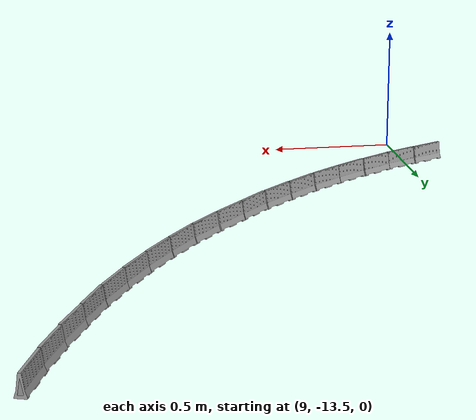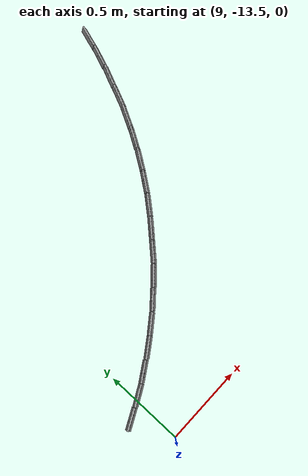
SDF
<sdf version="1.6">
 <world name="bfmc_official">
  <model name="separator_clone_clone_clone_clone_clone_clone_clone_clone_2_clone_clone_clone_clone_clone_clone_clone_clone">
   <link name="separator::separator::link_0">
    <inertial>
     <mass>1</mass>
     <inertia>
      <ixx>0.166667</ixx>
      <ixy>0</ixy>
      <ixz>0</ixz>
      <iyy>0.166667</iyy>
      <iyz>0</iyz>
      <izz>0.166667</izz>
     </inertia>
    </inertial>
    <visual name="visual">
     <geometry><mesh><uri>model://separator/meshes/separator.dae</uri><scale>1 1 1</scale></mesh></geometry>
     <material>
      <lighting>1</lighting>
      <script><uri>file://media/materials/scripts/gazebo.material</uri><name>Gazebo/Gray</name></script>
      <shader type="vertex"><normal_map>__default__</normal_map></shader>
      <ambient>0.3 0.3 0.3 1</ambient>
      <diffuse>0.7 0.7 0.7 1</diffuse>
      <specular>0.01 0.01 0.01 1</specular>
      <emissive>0 0 0 1</emissive>
     </material>
    </visual>
    <collision name="collision">
     <geometry><mesh><uri>model://separator/meshes/separator.dae</uri><scale>1 1 1</scale></mesh></geometry>
     <surface>
      <friction>
       <ode><mu>1</mu><mu2>1</mu2><fdir1>0 0 0</fdir1><slip1>0</slip1><slip2>0</slip2></ode>
       <torsional>
        <coefficient>1</coefficient>
        <patch_radius>0</patch_radius>
        <surface_radius>0</surface_radius>
        <use_patch_radius>1</use_patch_radius>
        <ode><slip>0</slip></ode>
       </torsional>
      </friction>
      <bounce><restitution_coefficient>0</restitution_coefficient><threshold>1e+06</threshold></bounce>
      <contact>
       <collide_without_contact>0</collide_without_contact>
       <collide_without_contact_bitmask>1</collide_without_contact_bitmask>
       <collide_bitmask>1</collide_bitmask>
       <ode>
        <soft_cfm>0</soft_cfm>
        <soft_erp>0.2</soft_erp>
        <kp>1e+13</kp>
        <kd>1</kd>
        <max_vel>0.01</max_vel>
        <min_depth>0</min_depth>
       </ode>
       <bullet>
        <split_impulse>1</split_impulse>
        <split_impulse_penetration_threshold>-0.01</split_impulse_penetration_threshold>
        <soft_cfm>0</soft_cfm>
        <soft_erp>0.2</soft_erp>
        <kp>1e+13</kp>
        <kd>1</kd>
       </bullet>
      </contact>
     </surface>
    </collision>
   </link>
   <static>1</static>
   <pose>8.90079 -13.2384 0.044642 0 -0 2.02995</pose>
  </model>
  <model name="separator_clone_clone_clone_clone_clone_clone_clone_clone_2_clone_clone_clone_clone_clone_clone_clone_clone_clone">
   <link name="separator::separator::link_0">
    <inertial>
     <mass>1</mass>
     <inertia>
      <ixx>0.166667</ixx>
      <ixy>0</ixy>
      <ixz>0</ixz>
      <iyy>0.166667</iyy>
      <iyz>0</iyz>
      <izz>0.166667</izz>
     </inertia>
    </inertial>
    <visual name="visual">
     <geometry><mesh><uri>model://separator/meshes/separator.dae</uri><scale>1 1 1</scale></mesh></geometry>
     <material>
      <lighting>1</lighting>
      <script><uri>file://media/materials/scripts/gazebo.material</uri><name>Gazebo/Gray</name></script>
      <shader type="vertex"><normal_map>__default__</normal_map></shader>
      <ambient>0.3 0.3 0.3 1</ambient>
      <diffuse>0.7 0.7 0.7 1</diffuse>
      <specular>0.01 0.01 0.01 1</specular>
      <emissive>0 0 0 1</emissive>
     </material>
    </visual>
    <collision name="collision">
     <geometry><mesh><uri>model://separator/meshes/separator.dae</uri><scale>1 1 1</scale></mesh></geometry>
     <surface>
      <friction>
       <ode><mu>1</mu><mu2>1</mu2><fdir1>0 0 0</fdir1><slip1>0</slip1><slip2>0</slip2></ode>
       <torsional>
        <coefficient>1</coefficient>
        <patch_radius>0</patch_radius>
        <surface_radius>0</surface_radius>
        <use_patch_radius>1</use_patch_radius>
        <ode><slip>0</slip></ode>
       </torsional>
      </friction>
      <bounce><restitution_coefficient>0</restitution_coefficient><threshold>1e+06</threshold></bounce>
      <contact>
       <collide_without_contact>0</collide_without_contact>
       <collide_without_contact_bitmask>1</collide_without_contact_bitmask>
       <collide_bitmask>1</collide_bitmask>
       <ode>
        <soft_cfm>0</soft_cfm>
        <soft_erp>0.2</soft_erp>
        <kp>1e+13</kp>
        <kd>1</kd>
        <max_vel>0.01</max_vel>
        <min_depth>0</min_depth>
       </ode>
       <bullet>
        <split_impulse>1</split_impulse>
        <split_impulse_penetration_threshold>-0.01</split_impulse_penetration_threshold>
        <soft_cfm>0</soft_cfm>
        <soft_erp>0.2</soft_erp>
        <kp>1e+13</kp>
        <kd>1</kd>
       </bullet>
      </contact>
     </surface>
    </collision>
   </link>
   <static>1</static>
   <pose>9.03025 -13.1748 0.044642 0 -0 2.05697</pose>
  </model>
  <model name="separator_clone_clone_clone_clone_clone_clone_clone_clone_2_clone_clone_clone_clone_clone_clone_clone_clone_clone_clone">
   <link name="separator::separator::link_0">
    <inertial>
     <mass>1</mass>
     <inertia>
      <ixx>0.166667</ixx>
      <ixy>0</ixy>
      <ixz>0</ixz>
      <iyy>0.166667</iyy>
      <iyz>0</iyz>
      <izz>0.166667</izz>
     </inertia>
    </inertial>
    <visual name="visual">
     <geometry><mesh><uri>model://separator/meshes/separator.dae</uri><scale>1 1 1</scale></mesh></geometry>
     <material>
      <lighting>1</lighting>
      <script><uri>file://media/materials/scripts/gazebo.material</uri><name>Gazebo/Gray</name></script>
      <shader type="vertex"><normal_map>__default__</normal_map></shader>
      <ambient>0.3 0.3 0.3 1</ambient>
      <diffuse>0.7 0.7 0.7 1</diffuse>
      <specular>0.01 0.01 0.01 1</specular>
      <emissive>0 0 0 1</emissive>
     </material>
    </visual>
    <collision name="collision">
     <geometry><mesh><uri>model://separator/meshes/separator.dae</uri><scale>1 1 1</scale></mesh></geometry>
     <surface>
      <friction>
       <ode><mu>1</mu><mu2>1</mu2><fdir1>0 0 0</fdir1><slip1>0</slip1><slip2>0</slip2></ode>
       <torsional>
        <coefficient>1</coefficient>
        <patch_radius>0</patch_radius>
        <surface_radius>0</surface_radius>
        <use_patch_radius>1</use_patch_radius>
        <ode><slip>0</slip></ode>
       </torsional>
      </friction>
      <bounce><restitution_coefficient>0</restitution_coefficient><threshold>1e+06</threshold></bounce>
      <contact>
       <collide_without_contact>0</collide_without_contact>
       <collide_without_contact_bitmask>1</collide_without_contact_bitmask>
       <collide_bitmask>1</collide_bitmask>
       <ode>
        <soft_cfm>0</soft_cfm>
        <soft_erp>0.2</soft_erp>
        <kp>1e+13</kp>
        <kd>1</kd>
        <max_vel>0.01</max_vel>
        <min_depth>0</min_depth>
       </ode>
       <bullet>
        <split_impulse>1</split_impulse>
        <split_impulse_penetration_threshold>-0.01</split_impulse_penetration_threshold>
        <soft_cfm>0</soft_cfm>
        <soft_erp>0.2</soft_erp>
        <kp>1e+13</kp>
        <kd>1</kd>
       </bullet>
      </contact>
     </surface>
    </collision>
   </link>
   <static>1</static>
   <pose>9.15316 -13.1034 0.044642 0 -0 2.12953</pose>
  </model>
  <model name="separator_clone_clone_clone_clone_clone_clone_clone_clone_2_clone_clone_clone_clone_clone_clone_clone_clone_clone_clone_clone">
   <link name="separator::separator::link_0">
    <inertial>
     <mass>1</mass>
     <inertia>
      <ixx>0.166667</ixx>
      <ixy>0</ixy>
      <ixz>0</ixz>
      <iyy>0.166667</iyy>
      <iyz>0</iyz>
      <izz>0.166667</izz>
     </inertia>
    </inertial>
    <visual name="visual">
     <geometry><mesh><uri>model://separator/meshes/separator.dae</uri><scale>1 1 1</scale></mesh></geometry>
     <material>
      <lighting>1</lighting>
      <script><uri>file://media/materials/scripts/gazebo.material</uri><name>Gazebo/Gray</name></script>
      <shader type="vertex"><normal_map>__default__</normal_map></shader>
      <ambient>0.3 0.3 0.3 1</ambient>
      <diffuse>0.7 0.7 0.7 1</diffuse>
      <specular>0.01 0.01 0.01 1</specular>
      <emissive>0 0 0 1</emissive>
     </material>
    </visual>
    <collision name="collision">
     <geometry><mesh><uri>model://separator/meshes/separator.dae</uri><scale>1 1 1</scale></mesh></geometry>
     <surface>
      <friction>
       <ode><mu>1</mu><mu2>1</mu2><fdir1>0 0 0</fdir1><slip1>0</slip1><slip2>0</slip2></ode>
       <torsional>
        <coefficient>1</coefficient>
        <patch_radius>0</patch_radius>
        <surface_radius>0</surface_radius>
        <use_patch_radius>1</use_patch_radius>
        <ode><slip>0</slip></ode>
       </torsional>
      </friction>
      <bounce><restitution_coefficient>0</restitution_coefficient><threshold>1e+06</threshold></bounce>
      <contact>
       <collide_without_contact>0</collide_without_contact>
       <collide_without_contact_bitmask>1</collide_without_contact_bitmask>
       <collide_bitmask>1</collide_bitmask>
       <ode>
        <soft_cfm>0</soft_cfm>
        <soft_erp>0.2</soft_erp>
        <kp>1e+13</kp>
        <kd>1</kd>
        <max_vel>0.01</max_vel>
        <min_depth>0</min_depth>
       </ode>
       <bullet>
        <split_impulse>1</split_impulse>
        <split_impulse_penetration_threshold>-0.01</split_impulse_penetration_threshold>
        <soft_cfm>0</soft_cfm>
        <soft_erp>0.2</soft_erp>
        <kp>1e+13</kp>
        <kd>1</kd>
       </bullet>
      </contact>
     </surface>
    </collision>
   </link>
   <static>1</static>
   <pose>9.27531 -13.0273 0.044642 0 -0 2.16994</pose>
  </model>
  <model name="separator_clone_clone_clone_clone_clone_clone_clone_clone_2_clone_clone_clone_clone_clone_clone_clone_clone_clone_clone_clone_clone">
   <link name="separator::separator::link_0">
    <inertial>
     <mass>1</mass>
     <inertia>
      <ixx>0.166667</ixx>
      <ixy>0</ixy>
      <ixz>0</ixz>
      <iyy>0.166667</iyy>
      <iyz>0</iyz>
      <izz>0.166667</izz>
     </inertia>
    </inertial>
    <visual name="visual">
     <geometry><mesh><uri>model://separator/meshes/separator.dae</uri><scale>1 1 1</scale></mesh></geometry>
     <material>
      <lighting>1</lighting>
      <script><uri>file://media/materials/scripts/gazebo.material</uri><name>Gazebo/Gray</name></script>
      <shader type="vertex"><normal_map>__default__</normal_map></shader>
      <ambient>0.3 0.3 0.3 1</ambient>
      <diffuse>0.7 0.7 0.7 1</diffuse>
      <specular>0.01 0.01 0.01 1</specular>
      <emissive>0 0 0 1</emissive>
     </material>
    </visual>
    <collision name="collision">
     <geometry><mesh><uri>model://separator/meshes/separator.dae</uri><scale>1 1 1</scale></mesh></geometry>
     <surface>
      <friction>
       <ode><mu>1</mu><mu2>1</mu2><fdir1>0 0 0</fdir1><slip1>0</slip1><slip2>0</slip2></ode>
       <torsional>
        <coefficient>1</coefficient>
        <patch_radius>0</patch_radius>
        <surface_radius>0</surface_radius>
        <use_patch_radius>1</use_patch_radius>
        <ode><slip>0</slip></ode>
       </torsional>
      </friction>
      <bounce><restitution_coefficient>0</restitution_coefficient><threshold>1e+06</threshold></bounce>
      <contact>
       <collide_without_contact>0</collide_without_contact>
       <collide_without_contact_bitmask>1</collide_without_contact_bitmask>
       <collide_bitmask>1</collide_bitmask>
       <ode>
        <soft_cfm>0</soft_cfm>
        <soft_erp>0.2</soft_erp>
        <kp>1e+13</kp>
        <kd>1</kd>
        <max_vel>0.01</max_vel>
        <min_depth>0</min_depth>
       </ode>
       <bullet>
        <split_impulse>1</split_impulse>
        <split_impulse_penetration_threshold>-0.01</split_impulse_penetration_threshold>
        <soft_cfm>0</soft_cfm>
        <soft_erp>0.2</soft_erp>
        <kp>1e+13</kp>
        <kd>1</kd>
       </bullet>
      </contact>
     </surface>
    </collision>
   </link>
   <static>1</static>
   <pose>9.39107 -12.9448 0.044642 0 -0 2.20818</pose>
  </model>
  <model name="separator_clone_clone_clone_clone_clone_clone_clone_clone_2_clone_clone_clone_clone_clone_clone_clone_clone_clone_clone_clone_clone_clone">
   <link name="separator::separator::link_0">
    <inertial>
     <mass>1</mass>
     <inertia>
      <ixx>0.166667</ixx>
      <ixy>0</ixy>
      <ixz>0</ixz>
      <iyy>0.166667</iyy>
      <iyz>0</iyz>
      <izz>0.166667</izz>
     </inertia>
    </inertial>
    <visual name="visual">
     <geometry><mesh><uri>model://separator/meshes/separator.dae</uri><scale>1 1 1</scale></mesh></geometry>
     <material>
      <lighting>1</lighting>
      <script><uri>file://media/materials/scripts/gazebo.material</uri><name>Gazebo/Gray</name></script>
      <shader type="vertex"><normal_map>__default__</normal_map></shader>
      <ambient>0.3 0.3 0.3 1</ambient>
      <diffuse>0.7 0.7 0.7 1</diffuse>
      <specular>0.01 0.01 0.01 1</specular>
      <emissive>0 0 0 1</emissive>
     </material>
    </visual>
    <collision name="collision">
     <geometry><mesh><uri>model://separator/meshes/separator.dae</uri><scale>1 1 1</scale></mesh></geometry>
     <surface>
      <friction>
       <ode><mu>1</mu><mu2>1</mu2><fdir1>0 0 0</fdir1><slip1>0</slip1><slip2>0</slip2></ode>
       <torsional>
        <coefficient>1</coefficient>
        <patch_radius>0</patch_radius>
        <surface_radius>0</surface_radius>
        <use_patch_radius>1</use_patch_radius>
        <ode><slip>0</slip></ode>
       </torsional>
      </friction>
      <bounce><restitution_coefficient>0</restitution_coefficient><threshold>1e+06</threshold></bounce>
      <contact>
       <collide_without_contact>0</collide_without_contact>
       <collide_without_contact_bitmask>1</collide_without_contact_bitmask>
       <collide_bitmask>1</collide_bitmask>
       <ode>
        <soft_cfm>0</soft_cfm>
        <soft_erp>0.2</soft_erp>
        <kp>1e+13</kp>
        <kd>1</kd>
        <max_vel>0.01</max_vel>
        <min_depth>0</min_depth>
       </ode>
       <bullet>
        <split_impulse>1</split_impulse>
        <split_impulse_penetration_threshold>-0.01</split_impulse_penetration_threshold>
        <soft_cfm>0</soft_cfm>
        <soft_erp>0.2</soft_erp>
        <kp>1e+13</kp>
        <kd>1</kd>
       </bullet>
      </contact>
     </surface>
    </collision>
   </link>
   <static>1</static>
   <pose>9.50524 -12.8547 0.044642 0 -0 2.27891</pose>
  </model>
  <model name="separator_clone_clone_clone_clone_clone_clone_clone_clone_2_clone_clone_clone_clone_clone_clone_clone_clone_clone_clone_clone_clone_clone_clone">
   <link name="separator::separator::link_0">
    <inertial>
     <mass>1</mass>
     <inertia>
      <ixx>0.166667</ixx>
      <ixy>0</ixy>
      <ixz>0</ixz>
      <iyy>0.166667</iyy>
      <iyz>0</iyz>
      <izz>0.166667</izz>
     </inertia>
    </inertial>
    <visual name="visual">
     <geometry><mesh><uri>model://separator/meshes/separator.dae</uri><scale>1 1 1</scale></mesh></geometry>
     <material>
      <lighting>1</lighting>
      <script><uri>file://media/materials/scripts/gazebo.material</uri><name>Gazebo/Gray</name></script>
      <shader type="vertex"><normal_map>__default__</normal_map></shader>
      <ambient>0.3 0.3 0.3 1</ambient>
      <diffuse>0.7 0.7 0.7 1</diffuse>
      <specular>0.01 0.01 0.01 1</specular>
      <emissive>0 0 0 1</emissive>
     </material>
    </visual>
    <collision name="collision">
     <geometry><mesh><uri>model://separator/meshes/separator.dae</uri><scale>1 1 1</scale></mesh></geometry>
     <surface>
      <friction>
       <ode><mu>1</mu><mu2>1</mu2><fdir1>0 0 0</fdir1><slip1>0</slip1><slip2>0</slip2></ode>
       <torsional>
        <coefficient>1</coefficient>
        <patch_radius>0</patch_radius>
        <surface_radius>0</surface_radius>
        <use_patch_radius>1</use_patch_radius>
        <ode><slip>0</slip></ode>
       </torsional>
      </friction>
      <bounce><restitution_coefficient>0</restitution_coefficient><threshold>1e+06</threshold></bounce>
      <contact>
       <collide_without_contact>0</collide_without_contact>
       <collide_without_contact_bitmask>1</collide_without_contact_bitmask>
       <collide_bitmask>1</collide_bitmask>
       <ode>
        <soft_cfm>0</soft_cfm>
        <soft_erp>0.2</soft_erp>
        <kp>1e+13</kp>
        <kd>1</kd>
        <max_vel>0.01</max_vel>
        <min_depth>0</min_depth>
       </ode>
       <bullet>
        <split_impulse>1</split_impulse>
        <split_impulse_penetration_threshold>-0.01</split_impulse_penetration_threshold>
        <soft_cfm>0</soft_cfm>
        <soft_erp>0.2</soft_erp>
        <kp>1e+13</kp>
        <kd>1</kd>
       </bullet>
      </contact>
     </surface>
    </collision>
   </link>
   <static>1</static>
   <pose>9.61363 -12.761 0.044642 0 -0 2.31423</pose>
  </model>
  <model name="separator_clone_clone_clone_clone_clone_clone_clone_clone_2_clone_clone_clone_clone_clone_clone_clone_clone_clone_clone_clone_clone_clone_clone_clone">
   <link name="separator::separator::link_0">
    <inertial>
     <mass>1</mass>
     <inertia>
      <ixx>0.166667</ixx>
      <ixy>0</ixy>
      <ixz>0</ixz>
      <iyy>0.166667</iyy>
      <iyz>0</iyz>
      <izz>0.166667</izz>
     </inertia>
    </inertial>
    <visual name="visual">
     <geometry><mesh><uri>model://separator/meshes/separator.dae</uri><scale>1 1 1</scale></mesh></geometry>
     <material>
      <lighting>1</lighting>
      <script><uri>file://media/materials/scripts/gazebo.material</uri><name>Gazebo/Gray</name></script>
      <shader type="vertex"><normal_map>__default__</normal_map></shader>
      <ambient>0.3 0.3 0.3 1</ambient>
      <diffuse>0.7 0.7 0.7 1</diffuse>
      <specular>0.01 0.01 0.01 1</specular>
      <emissive>0 0 0 1</emissive>
     </material>
    </visual>
    <collision name="collision">
     <geometry><mesh><uri>model://separator/meshes/separator.dae</uri><scale>1 1 1</scale></mesh></geometry>
     <surface>
      <friction>
       <ode><mu>1</mu><mu2>1</mu2><fdir1>0 0 0</fdir1><slip1>0</slip1><slip2>0</slip2></ode>
       <torsional>
        <coefficient>1</coefficient>
        <patch_radius>0</patch_radius>
        <surface_radius>0</surface_radius>
        <use_patch_radius>1</use_patch_radius>
        <ode><slip>0</slip></ode>
       </torsional>
      </friction>
      <bounce><restitution_coefficient>0</restitution_coefficient><threshold>1e+06</threshold></bounce>
      <contact>
       <collide_without_contact>0</collide_without_contact>
       <collide_without_contact_bitmask>1</collide_without_contact_bitmask>
       <collide_bitmask>1</collide_bitmask>
       <ode>
        <soft_cfm>0</soft_cfm>
        <soft_erp>0.2</soft_erp>
        <kp>1e+13</kp>
        <kd>1</kd>
        <max_vel>0.01</max_vel>
        <min_depth>0</min_depth>
       </ode>
       <bullet>
        <split_impulse>1</split_impulse>
        <split_impulse_penetration_threshold>-0.01</split_impulse_penetration_threshold>
        <soft_cfm>0</soft_cfm>
        <soft_erp>0.2</soft_erp>
        <kp>1e+13</kp>
        <kd>1</kd>
       </bullet>
      </contact>
     </surface>
    </collision>
   </link>
   <static>1</static>
   <pose>9.71749 -12.661 0.044642 0 -0 2.39177</pose>
  </model>
  <model name="separator_clone_clone_clone_clone_clone_clone_clone_clone_2_clone_clone_clone_clone_clone_clone_clone_clone_clone_clone_clone_clone_clone_clone_clone_clone">
   <link name="separator::separator::link_0">
    <inertial>
     <mass>1</mass>
     <inertia>
      <ixx>0.166667</ixx>
      <ixy>0</ixy>
      <ixz>0</ixz>
      <iyy>0.166667</iyy>
      <iyz>0</iyz>
      <izz>0.166667</izz>
     </inertia>
    </inertial>
    <visual name="visual">
     <geometry><mesh><uri>model://separator/meshes/separator.dae</uri><scale>1 1 1</scale></mesh></geometry>
     <material>
      <lighting>1</lighting>
      <script><uri>file://media/materials/scripts/gazebo.material</uri><name>Gazebo/Gray</name></script>
      <shader type="vertex"><normal_map>__default__</normal_map></shader>
      <ambient>0.3 0.3 0.3 1</ambient>
      <diffuse>0.7 0.7 0.7 1</diffuse>
      <specular>0.01 0.01 0.01 1</specular>
      <emissive>0 0 0 1</emissive>
     </material>
    </visual>
    <collision name="collision">
     <geometry><mesh><uri>model://separator/meshes/separator.dae</uri><scale>1 1 1</scale></mesh></geometry>
     <surface>
      <friction>
       <ode><mu>1</mu><mu2>1</mu2><fdir1>0 0 0</fdir1><slip1>0</slip1><slip2>0</slip2></ode>
       <torsional>
        <coefficient>1</coefficient>
        <patch_radius>0</patch_radius>
        <surface_radius>0</surface_radius>
        <use_patch_radius>1</use_patch_radius>
        <ode><slip>0</slip></ode>
       </torsional>
      </friction>
      <bounce><restitution_coefficient>0</restitution_coefficient><threshold>1e+06</threshold></bounce>
      <contact>
       <collide_without_contact>0</collide_without_contact>
       <collide_without_contact_bitmask>1</collide_without_contact_bitmask>
       <collide_bitmask>1</collide_bitmask>
       <ode>
        <soft_cfm>0</soft_cfm>
        <soft_erp>0.2</soft_erp>
        <kp>1e+13</kp>
        <kd>1</kd>
        <max_vel>0.01</max_vel>
        <min_depth>0</min_depth>
       </ode>
       <bullet>
        <split_impulse>1</split_impulse>
        <split_impulse_penetration_threshold>-0.01</split_impulse_penetration_threshold>
        <soft_cfm>0</soft_cfm>
        <soft_erp>0.2</soft_erp>
        <kp>1e+13</kp>
        <kd>1</kd>
       </bullet>
      </contact>
     </surface>
    </collision>
   </link>
   <static>1</static>
   <pose>9.81521 -12.5562 0.044642 0 -0 2.39177</pose>
  </model>
  <model name="separator_clone_clone_clone_clone_clone_clone_clone_clone_2_clone_clone_clone_clone_clone_clone_clone_clone_clone_clone_clone_clone_clone_clone_clone_clone_clone">
   <link name="separator::separator::link_0">
    <inertial>
     <mass>1</mass>
     <inertia>
      <ixx>0.166667</ixx>
      <ixy>0</ixy>
      <ixz>0</ixz>
      <iyy>0.166667</iyy>
      <iyz>0</iyz>
      <izz>0.166667</izz>
     </inertia>
    </inertial>
    <visual name="visual">
     <geometry><mesh><uri>model://separator/meshes/separator.dae</uri><scale>1 1 1</scale></mesh></geometry>
     <material>
      <lighting>1</lighting>
      <script><uri>file://media/materials/scripts/gazebo.material</uri><name>Gazebo/Gray</name></script>
      <shader type="vertex"><normal_map>__default__</normal_map></shader>
      <ambient>0.3 0.3 0.3 1</ambient>
      <diffuse>0.7 0.7 0.7 1</diffuse>
      <specular>0.01 0.01 0.01 1</specular>
      <emissive>0 0 0 1</emissive>
     </material>
    </visual>
    <collision name="collision">
     <geometry><mesh><uri>model://separator/meshes/separator.dae</uri><scale>1 1 1</scale></mesh></geometry>
     <surface>
      <friction>
       <ode><mu>1</mu><mu2>1</mu2><fdir1>0 0 0</fdir1><slip1>0</slip1><slip2>0</slip2></ode>
       <torsional>
        <coefficient>1</coefficient>
        <patch_radius>0</patch_radius>
        <surface_radius>0</surface_radius>
        <use_patch_radius>1</use_patch_radius>
        <ode><slip>0</slip></ode>
       </torsional>
      </friction>
      <bounce><restitution_coefficient>0</restitution_coefficient><threshold>1e+06</threshold></bounce>
      <contact>
       <collide_without_contact>0</collide_without_contact>
       <collide_without_contact_bitmask>1</collide_without_contact_bitmask>
       <collide_bitmask>1</collide_bitmask>
       <ode>
        <soft_cfm>0</soft_cfm>
        <soft_erp>0.2</soft_erp>
        <kp>1e+13</kp>
        <kd>1</kd>
        <max_vel>0.01</max_vel>
        <min_depth>0</min_depth>
       </ode>
       <bullet>
        <split_impulse>1</split_impulse>
        <split_impulse_penetration_threshold>-0.01</split_impulse_penetration_threshold>
        <soft_cfm>0</soft_cfm>
        <soft_erp>0.2</soft_erp>
        <kp>1e+13</kp>
        <kd>1</kd>
       </bullet>
      </contact>
     </surface>
    </collision>
   </link>
   <static>1</static>
   <pose>9.9129 -12.4464 0.044642 0 -0 2.43888</pose>
  </model>
  <model name="separator_clone_clone_clone_clone_clone_clone_clone_clone_2_clone_clone_clone_clone_clone_clone_clone_clone_clone_clone_clone_clone_clone_clone_clone_clone_clone_clone">
   <link name="separator::separator::link_0">
    <inertial>
     <mass>1</mass>
     <inertia>
      <ixx>0.166667</ixx>
      <ixy>0</ixy>
      <ixz>0</ixz>
      <iyy>0.166667</iyy>
      <iyz>0</iyz>
      <izz>0.166667</izz>
     </inertia>
    </inertial>
    <visual name="visual">
     <geometry><mesh><uri>model://separator/meshes/separator.dae</uri><scale>1 1 1</scale></mesh></geometry>
     <material>
      <lighting>1</lighting>
      <script><uri>file://media/materials/scripts/gazebo.material</uri><name>Gazebo/Gray</name></script>
      <shader type="vertex"><normal_map>__default__</normal_map></shader>
      <ambient>0.3 0.3 0.3 1</ambient>
      <diffuse>0.7 0.7 0.7 1</diffuse>
      <specular>0.01 0.01 0.01 1</specular>
      <emissive>0 0 0 1</emissive>
     </material>
    </visual>
    <collision name="collision">
     <geometry><mesh><uri>model://separator/meshes/separator.dae</uri><scale>1 1 1</scale></mesh></geometry>
     <surface>
      <friction>
       <ode><mu>1</mu><mu2>1</mu2><fdir1>0 0 0</fdir1><slip1>0</slip1><slip2>0</slip2></ode>
       <torsional>
        <coefficient>1</coefficient>
        <patch_radius>0</patch_radius>
        <surface_radius>0</surface_radius>
        <use_patch_radius>1</use_patch_radius>
        <ode><slip>0</slip></ode>
       </torsional>
      </friction>
      <bounce><restitution_coefficient>0</restitution_coefficient><threshold>1e+06</threshold></bounce>
      <contact>
       <collide_without_contact>0</collide_without_contact>
       <collide_without_contact_bitmask>1</collide_without_contact_bitmask>
       <collide_bitmask>1</collide_bitmask>
       <ode>
        <soft_cfm>0</soft_cfm>
        <soft_erp>0.2</soft_erp>
        <kp>1e+13</kp>
        <kd>1</kd>
        <max_vel>0.01</max_vel>
        <min_depth>0</min_depth>
       </ode>
       <bullet>
        <split_impulse>1</split_impulse>
        <split_impulse_penetration_threshold>-0.01</split_impulse_penetration_threshold>
        <soft_cfm>0</soft_cfm>
        <soft_erp>0.2</soft_erp>
        <kp>1e+13</kp>
        <kd>1</kd>
       </bullet>
      </contact>
     </surface>
    </collision>
   </link>
   <static>1</static>
   <pose>10.0031 -12.3324 0.044642 0 -0 2.50868</pose>
  </model>
  <model name="separator_clone_clone_clone_clone_clone_clone_clone_clone_2_clone_clone_clone_clone_clone_clone_clone_clone_clone_clone_clone_clone_clone_clone_clone_clone_clone_clone_clone">
   <link name="separator::separator::link_0">
    <inertial>
     <mass>1</mass>
     <inertia>
      <ixx>0.166667</ixx>
      <ixy>0</ixy>
      <ixz>0</ixz>
      <iyy>0.166667</iyy>
      <iyz>0</iyz>
      <izz>0.166667</izz>
     </inertia>
    </inertial>
    <visual name="visual">
     <geometry><mesh><uri>model://separator/meshes/separator.dae</uri><scale>1 1 1</scale></mesh></geometry>
     <material>
      <lighting>1</lighting>
      <script><uri>file://media/materials/scripts/gazebo.material</uri><name>Gazebo/Gray</name></script>
      <shader type="vertex"><normal_map>__default__</normal_map></shader>
      <ambient>0.3 0.3 0.3 1</ambient>
      <diffuse>0.7 0.7 0.7 1</diffuse>
      <specular>0.01 0.01 0.01 1</specular>
      <emissive>0 0 0 1</emissive>
     </material>
    </visual>
    <collision name="collision">
     <geometry><mesh><uri>model://separator/meshes/separator.dae</uri><scale>1 1 1</scale></mesh></geometry>
     <surface>
      <friction>
       <ode><mu>1</mu><mu2>1</mu2><fdir1>0 0 0</fdir1><slip1>0</slip1><slip2>0</slip2></ode>
       <torsional>
        <coefficient>1</coefficient>
        <patch_radius>0</patch_radius>
        <surface_radius>0</surface_radius>
        <use_patch_radius>1</use_patch_radius>
        <ode><slip>0</slip></ode>
       </torsional>
      </friction>
      <bounce><restitution_coefficient>0</restitution_coefficient><threshold>1e+06</threshold></bounce>
      <contact>
       <collide_without_contact>0</collide_without_contact>
       <collide_without_contact_bitmask>1</collide_without_contact_bitmask>
       <collide_bitmask>1</collide_bitmask>
       <ode>
        <soft_cfm>0</soft_cfm>
        <soft_erp>0.2</soft_erp>
        <kp>1e+13</kp>
        <kd>1</kd>
        <max_vel>0.01</max_vel>
        <min_depth>0</min_depth>
       </ode>
       <bullet>
        <split_impulse>1</split_impulse>
        <split_impulse_penetration_threshold>-0.01</split_impulse_penetration_threshold>
        <soft_cfm>0</soft_cfm>
        <soft_erp>0.2</soft_erp>
        <kp>1e+13</kp>
        <kd>1</kd>
       </bullet>
      </contact>
     </surface>
    </collision>
   </link>
   <static>1</static>
   <pose>10.0861 -12.2144 0.044642 0 -0 2.54929</pose>
  </model>
  <model name="separator_clone_clone_clone_clone_clone_clone_clone_clone_2_clone_clone_clone_clone_clone_clone_clone_clone_clone_clone_clone_clone_clone_clone_clone_clone_clone_clone_clone_clone">
   <link name="separator::separator::link_0">
    <inertial>
     <mass>1</mass>
     <inertia>
      <ixx>0.166667</ixx>
      <ixy>0</ixy>
      <ixz>0</ixz>
      <iyy>0.166667</iyy>
      <iyz>0</iyz>
      <izz>0.166667</izz>
     </inertia>
    </inertial>
    <visual name="visual">
     <geometry><mesh><uri>model://separator/meshes/separator.dae</uri><scale>1 1 1</scale></mesh></geometry>
     <material>
      <lighting>1</lighting>
      <script><uri>file://media/materials/scripts/gazebo.material</uri><name>Gazebo/Gray</name></script>
      <shader type="vertex"><normal_map>__default__</normal_map></shader>
      <ambient>0.3 0.3 0.3 1</ambient>
      <diffuse>0.7 0.7 0.7 1</diffuse>
      <specular>0.01 0.01 0.01 1</specular>
      <emissive>0 0 0 1</emissive>
     </material>
    </visual>
    <collision name="collision">
     <geometry><mesh><uri>model://separator/meshes/separator.dae</uri><scale>1 1 1</scale></mesh></geometry>
     <surface>
      <friction>
       <ode><mu>1</mu><mu2>1</mu2><fdir1>0 0 0</fdir1><slip1>0</slip1><slip2>0</slip2></ode>
       <torsional>
        <coefficient>1</coefficient>
        <patch_radius>0</patch_radius>
        <surface_radius>0</surface_radius>
        <use_patch_radius>1</use_patch_radius>
        <ode><slip>0</slip></ode>
       </torsional>
      </friction>
      <bounce><restitution_coefficient>0</restitution_coefficient><threshold>1e+06</threshold></bounce>
      <contact>
       <collide_without_contact>0</collide_without_contact>
       <collide_without_contact_bitmask>1</collide_without_contact_bitmask>
       <collide_bitmask>1</collide_bitmask>
       <ode>
        <soft_cfm>0</soft_cfm>
        <soft_erp>0.2</soft_erp>
        <kp>1e+13</kp>
        <kd>1</kd>
        <max_vel>0.01</max_vel>
        <min_depth>0</min_depth>
       </ode>
       <bullet>
        <split_impulse>1</split_impulse>
        <split_impulse_penetration_threshold>-0.01</split_impulse_penetration_threshold>
        <soft_cfm>0</soft_cfm>
        <soft_erp>0.2</soft_erp>
        <kp>1e+13</kp>
        <kd>1</kd>
       </bullet>
      </contact>
     </surface>
    </collision>
   </link>
   <static>1</static>
   <pose>10.1623 -12.0917 0.044642 0 -0 2.59981</pose>
  </model>
  <model name="separator_clone_clone_clone_clone_clone_clone_clone_clone_2_clone_clone_clone_clone_clone_clone_clone_clone_clone_clone_clone_clone_clone_clone_clone_clone_clone_clone_clone_clone_clone">
   <link name="separator::separator::link_0">
    <inertial>
     <mass>1</mass>
     <inertia>
      <ixx>0.166667</ixx>
      <ixy>0</ixy>
      <ixz>0</ixz>
      <iyy>0.166667</iyy>
      <iyz>0</iyz>
      <izz>0.166667</izz>
     </inertia>
    </inertial>
    <visual name="visual">
     <geometry><mesh><uri>model://separator/meshes/separator.dae</uri><scale>1 1 1</scale></mesh></geometry>
     <material>
      <lighting>1</lighting>
      <script><uri>file://media/materials/scripts/gazebo.material</uri><name>Gazebo/Gray</name></script>
      <shader type="vertex"><normal_map>__default__</normal_map></shader>
      <ambient>0.3 0.3 0.3 1</ambient>
      <diffuse>0.7 0.7 0.7 1</diffuse>
      <specular>0.01 0.01 0.01 1</specular>
      <emissive>0 0 0 1</emissive>
     </material>
    </visual>
    <collision name="collision">
     <geometry><mesh><uri>model://separator/meshes/separator.dae</uri><scale>1 1 1</scale></mesh></geometry>
     <surface>
      <friction>
       <ode><mu>1</mu><mu2>1</mu2><fdir1>0 0 0</fdir1><slip1>0</slip1><slip2>0</slip2></ode>
       <torsional>
        <coefficient>1</coefficient>
        <patch_radius>0</patch_radius>
        <surface_radius>0</surface_radius>
        <use_patch_radius>1</use_patch_radius>
        <ode><slip>0</slip></ode>
       </torsional>
      </friction>
      <bounce><restitution_coefficient>0</restitution_coefficient><threshold>1e+06</threshold></bounce>
      <contact>
       <collide_without_contact>0</collide_without_contact>
       <collide_without_contact_bitmask>1</collide_without_contact_bitmask>
       <collide_bitmask>1</collide_bitmask>
       <ode>
        <soft_cfm>0</soft_cfm>
        <soft_erp>0.2</soft_erp>
        <kp>1e+13</kp>
        <kd>1</kd>
        <max_vel>0.01</max_vel>
        <min_depth>0</min_depth>
       </ode>
       <bullet>
        <split_impulse>1</split_impulse>
        <split_impulse_penetration_threshold>-0.01</split_impulse_penetration_threshold>
        <soft_cfm>0</soft_cfm>
        <soft_erp>0.2</soft_erp>
        <kp>1e+13</kp>
        <kd>1</kd>
       </bullet>
      </contact>
     </surface>
    </collision>
   </link>
   <static>1</static>
   <pose>10.2314 -11.9673 0.044642 0 -0 2.65247</pose>
  </model>
  <model name="separator_clone_clone_clone_clone_clone_clone_clone_clone_2_clone_clone_clone_clone_clone_clone_clone_clone_clone_clone_clone_clone_clone_clone_clone_clone_clone_clone_clone_clone_clone_clone">
   <link name="separator::separator::link_0">
    <inertial>
     <mass>1</mass>
     <inertia>
      <ixx>0.166667</ixx>
      <ixy>0</ixy>
      <ixz>0</ixz>
      <iyy>0.166667</iyy>
      <iyz>0</iyz>
      <izz>0.166667</izz>
     </inertia>
    </inertial>
    <visual name="visual">
     <geometry><mesh><uri>model://separator/meshes/separator.dae</uri><scale>1 1 1</scale></mesh></geometry>
     <material>
      <lighting>1</lighting>
      <script><uri>file://media/materials/scripts/gazebo.material</uri><name>Gazebo/Gray</name></script>
      <shader type="vertex"><normal_map>__default__</normal_map></shader>
      <ambient>0.3 0.3 0.3 1</ambient>
      <diffuse>0.7 0.7 0.7 1</diffuse>
      <specular>0.01 0.01 0.01 1</specular>
      <emissive>0 0 0 1</emissive>
     </material>
    </visual>
    <collision name="collision">
     <geometry><mesh><uri>model://separator/meshes/separator.dae</uri><scale>1 1 1</scale></mesh></geometry>
     <surface>
      <friction>
       <ode><mu>1</mu><mu2>1</mu2><fdir1>0 0 0</fdir1><slip1>0</slip1><slip2>0</slip2></ode>
       <torsional>
        <coefficient>1</coefficient>
        <patch_radius>0</patch_radius>
        <surface_radius>0</surface_radius>
        <use_patch_radius>1</use_patch_radius>
        <ode><slip>0</slip></ode>
       </torsional>
      </friction>
      <bounce><restitution_coefficient>0</restitution_coefficient><threshold>1e+06</threshold></bounce>
      <contact>
       <collide_without_contact>0</collide_without_contact>
       <collide_without_contact_bitmask>1</collide_without_contact_bitmask>
       <collide_bitmask>1</collide_bitmask>
       <ode>
        <soft_cfm>0</soft_cfm>
        <soft_erp>0.2</soft_erp>
        <kp>1e+13</kp>
        <kd>1</kd>
        <max_vel>0.01</max_vel>
        <min_depth>0</min_depth>
       </ode>
       <bullet>
        <split_impulse>1</split_impulse>
        <split_impulse_penetration_threshold>-0.01</split_impulse_penetration_threshold>
        <soft_cfm>0</soft_cfm>
        <soft_erp>0.2</soft_erp>
        <kp>1e+13</kp>
        <kd>1</kd>
       </bullet>
      </contact>
     </surface>
    </collision>
   </link>
   <static>1</static>
   <pose>10.294 -11.8407 0.044642 0 -0 2.72834</pose>
  </model>
  <model name="separator_clone_clone_clone_clone_clone_clone_clone_clone_2_clone_clone_clone_clone_clone_clone_clone_clone_clone_clone_clone_clone_clone_clone_clone_clone_clone_clone_clone_clone_clone_clone_clone">
   <link name="separator::separator::link_0">
    <inertial>
     <mass>1</mass>
     <inertia>
      <ixx>0.166667</ixx>
      <ixy>0</ixy>
      <ixz>0</ixz>
      <iyy>0.166667</iyy>
      <iyz>0</iyz>
      <izz>0.166667</izz>
     </inertia>
    </inertial>
    <visual name="visual">
     <geometry><mesh><uri>model://separator/meshes/separator.dae</uri><scale>1 1 1</scale></mesh></geometry>
     <material>
      <lighting>1</lighting>
      <script><uri>file://media/materials/scripts/gazebo.material</uri><name>Gazebo/Gray</name></script>
      <shader type="vertex"><normal_map>__default__</normal_map></shader>
      <ambient>0.3 0.3 0.3 1</ambient>
      <diffuse>0.7 0.7 0.7 1</diffuse>
      <specular>0.01 0.01 0.01 1</specular>
      <emissive>0 0 0 1</emissive>
     </material>
    </visual>
    <collision name="collision">
     <geometry><mesh><uri>model://separator/meshes/separator.dae</uri><scale>1 1 1</scale></mesh></geometry>
     <surface>
      <friction>
       <ode><mu>1</mu><mu2>1</mu2><fdir1>0 0 0</fdir1><slip1>0</slip1><slip2>0</slip2></ode>
       <torsional>
        <coefficient>1</coefficient>
        <patch_radius>0</patch_radius>
        <surface_radius>0</surface_radius>
        <use_patch_radius>1</use_patch_radius>
        <ode><slip>0</slip></ode>
       </torsional>
      </friction>
      <bounce><restitution_coefficient>0</restitution_coefficient><threshold>1e+06</threshold></bounce>
      <contact>
       <collide_without_contact>0</collide_without_contact>
       <collide_without_contact_bitmask>1</collide_without_contact_bitmask>
       <collide_bitmask>1</collide_bitmask>
       <ode>
        <soft_cfm>0</soft_cfm>
        <soft_erp>0.2</soft_erp>
        <kp>1e+13</kp>
        <kd>1</kd>
        <max_vel>0.01</max_vel>
        <min_depth>0</min_depth>
       </ode>
       <bullet>
        <split_impulse>1</split_impulse>
        <split_impulse_penetration_threshold>-0.01</split_impulse_penetration_threshold>
        <soft_cfm>0</soft_cfm>
        <soft_erp>0.2</soft_erp>
        <kp>1e+13</kp>
        <kd>1</kd>
       </bullet>
      </contact>
     </surface>
    </collision>
   </link>
   <static>1</static>
   <pose>10.3501 -11.7095 0.044642 0 -0 2.72834</pose>
  </model>
  <model name="separator_clone_clone_clone_clone_clone_clone_clone_clone_2_clone_clone_clone_clone_clone_clone_clone_clone_clone_clone_clone_clone_clone_clone_clone_clone_clone_clone_clone_clone_clone_clone_clone_clone">
   <link name="separator::separator::link_0">
    <inertial>
     <mass>1</mass>
     <inertia>
      <ixx>0.166667</ixx>
      <ixy>0</ixy>
      <ixz>0</ixz>
      <iyy>0.166667</iyy>
      <iyz>0</iyz>
      <izz>0.166667</izz>
     </inertia>
    </inertial>
    <visual name="visual">
     <geometry><mesh><uri>model://separator/meshes/separator.dae</uri><scale>1 1 1</scale></mesh></geometry>
     <material>
      <lighting>1</lighting>
      <script><uri>file://media/materials/scripts/gazebo.material</uri><name>Gazebo/Gray</name></script>
      <shader type="vertex"><normal_map>__default__</normal_map></shader>
      <ambient>0.3 0.3 0.3 1</ambient>
      <diffuse>0.7 0.7 0.7 1</diffuse>
      <specular>0.01 0.01 0.01 1</specular>
      <emissive>0 0 0 1</emissive>
     </material>
    </visual>
    <collision name="collision">
     <geometry><mesh><uri>model://separator/meshes/separator.dae</uri><scale>1 1 1</scale></mesh></geometry>
     <surface>
      <friction>
       <ode><mu>1</mu><mu2>1</mu2><fdir1>0 0 0</fdir1><slip1>0</slip1><slip2>0</slip2></ode>
       <torsional>
        <coefficient>1</coefficient>
        <patch_radius>0</patch_radius>
        <surface_radius>0</surface_radius>
        <use_patch_radius>1</use_patch_radius>
        <ode><slip>0</slip></ode>
       </torsional>
      </friction>
      <bounce><restitution_coefficient>0</restitution_coefficient><threshold>1e+06</threshold></bounce>
      <contact>
       <collide_without_contact>0</collide_without_contact>
       <collide_without_contact_bitmask>1</collide_without_contact_bitmask>
       <collide_bitmask>1</collide_bitmask>
       <ode>
        <soft_cfm>0</soft_cfm>
        <soft_erp>0.2</soft_erp>
        <kp>1e+13</kp>
        <kd>1</kd>
        <max_vel>0.01</max_vel>
        <min_depth>0</min_depth>
       </ode>
       <bullet>
        <split_impulse>1</split_impulse>
        <split_impulse_penetration_threshold>-0.01</split_impulse_penetration_threshold>
        <soft_cfm>0</soft_cfm>
        <soft_erp>0.2</soft_erp>
        <kp>1e+13</kp>
        <kd>1</kd>
       </bullet>
      </contact>
     </surface>
    </collision>
   </link>
   <static>1</static>
   <pose>10.4015 -11.5772 0.044642 0 -0 2.77348</pose>
  </model>
  <model name="separator_clone_clone_clone_clone_clone_clone_clone_clone_2_clone_clone_clone_clone_clone_clone_clone_clone_clone_clone_clone_clone_clone_clone_clone_clone_clone_clone_clone_clone_clone_clone_clone_clone_clone">
   <link name="separator::separator::link_0">
    <inertial>
     <mass>1</mass>
     <inertia>
      <ixx>0.166667</ixx>
      <ixy>0</ixy>
      <ixz>0</ixz>
      <iyy>0.166667</iyy>
      <iyz>0</iyz>
      <izz>0.166667</izz>
     </inertia>
    </inertial>
    <visual name="visual">
     <geometry><mesh><uri>model://separator/meshes/separator.dae</uri><scale>1 1 1</scale></mesh></geometry>
     <material>
      <lighting>1</lighting>
      <script><uri>file://media/materials/scripts/gazebo.material</uri><name>Gazebo/Gray</name></script>
      <shader type="vertex"><normal_map>__default__</normal_map></shader>
      <ambient>0.3 0.3 0.3 1</ambient>
      <diffuse>0.7 0.7 0.7 1</diffuse>
      <specular>0.01 0.01 0.01 1</specular>
      <emissive>0 0 0 1</emissive>
     </material>
    </visual>
    <collision name="collision">
     <geometry><mesh><uri>model://separator/meshes/separator.dae</uri><scale>1 1 1</scale></mesh></geometry>
     <surface>
      <friction>
       <ode><mu>1</mu><mu2>1</mu2><fdir1>0 0 0</fdir1><slip1>0</slip1><slip2>0</slip2></ode>
       <torsional>
        <coefficient>1</coefficient>
        <patch_radius>0</patch_radius>
        <surface_radius>0</surface_radius>
        <use_patch_radius>1</use_patch_radius>
        <ode><slip>0</slip></ode>
       </torsional>
      </friction>
      <bounce><restitution_coefficient>0</restitution_coefficient><threshold>1e+06</threshold></bounce>
      <contact>
       <collide_without_contact>0</collide_without_contact>
       <collide_without_contact_bitmask>1</collide_without_contact_bitmask>
       <collide_bitmask>1</collide_bitmask>
       <ode>
        <soft_cfm>0</soft_cfm>
        <soft_erp>0.2</soft_erp>
        <kp>1e+13</kp>
        <kd>1</kd>
        <max_vel>0.01</max_vel>
        <min_depth>0</min_depth>
       </ode>
       <bullet>
        <split_impulse>1</split_impulse>
        <split_impulse_penetration_threshold>-0.01</split_impulse_penetration_threshold>
        <soft_cfm>0</soft_cfm>
        <soft_erp>0.2</soft_erp>
        <kp>1e+13</kp>
        <kd>1</kd>
       </bullet>
      </contact>
     </surface>
    </collision>
   </link>
   <static>1</static>
   <pose>10.4472 -11.4419 0.044642 0 -0 2.83585</pose>
  </model>
 </world>
</sdf>
